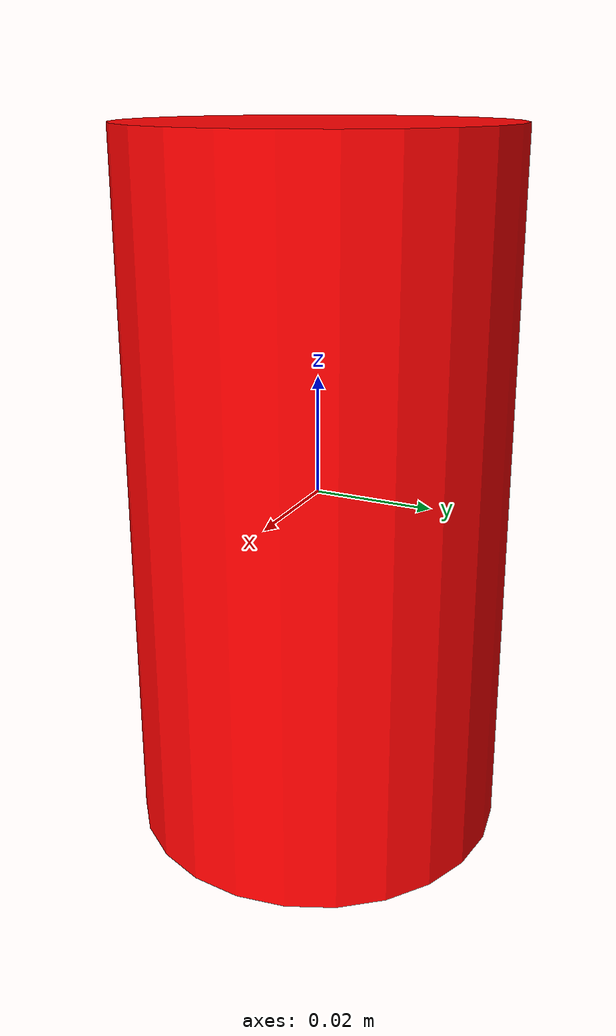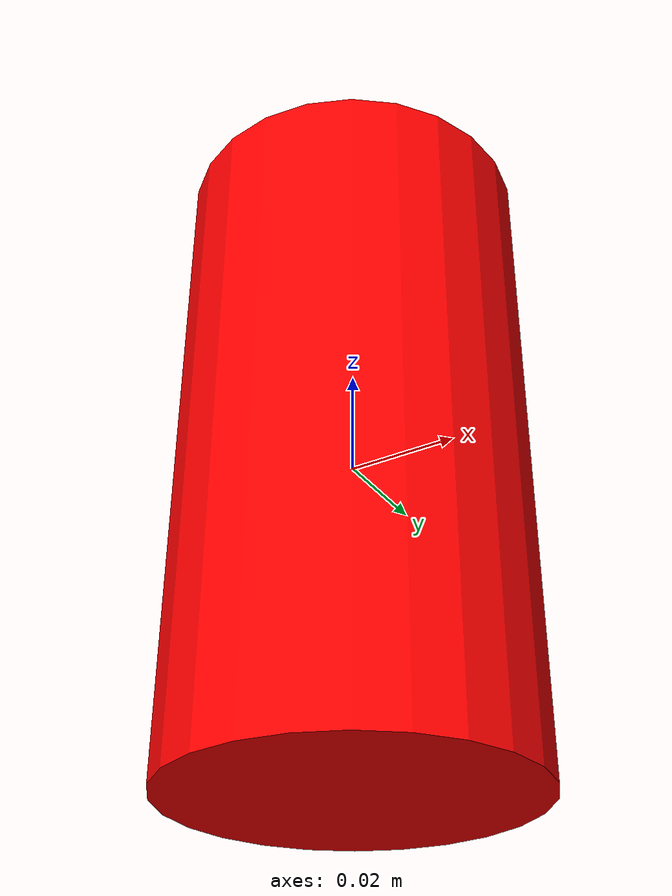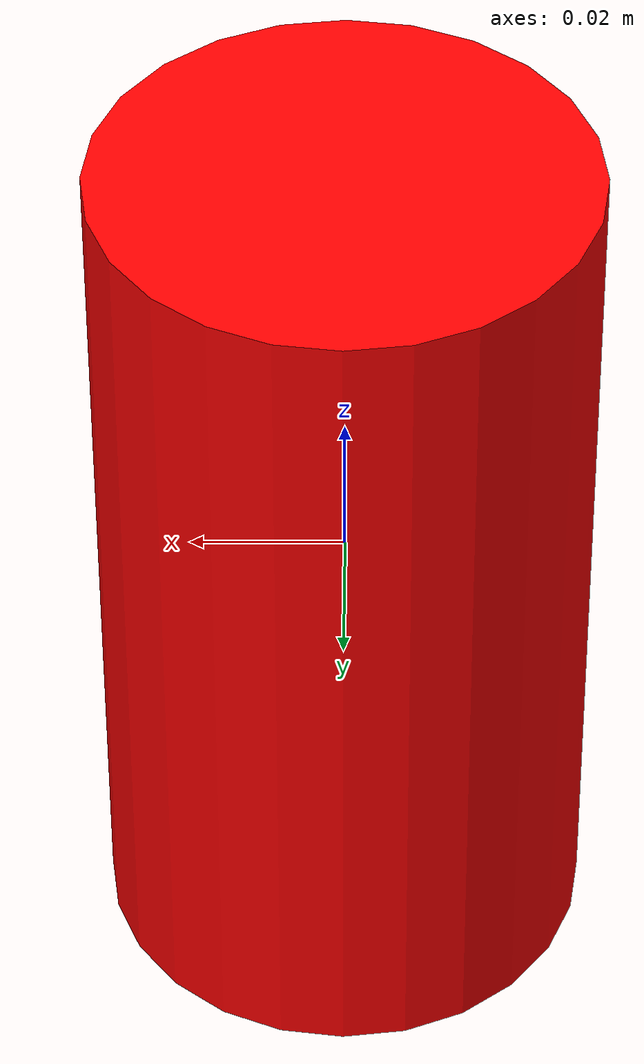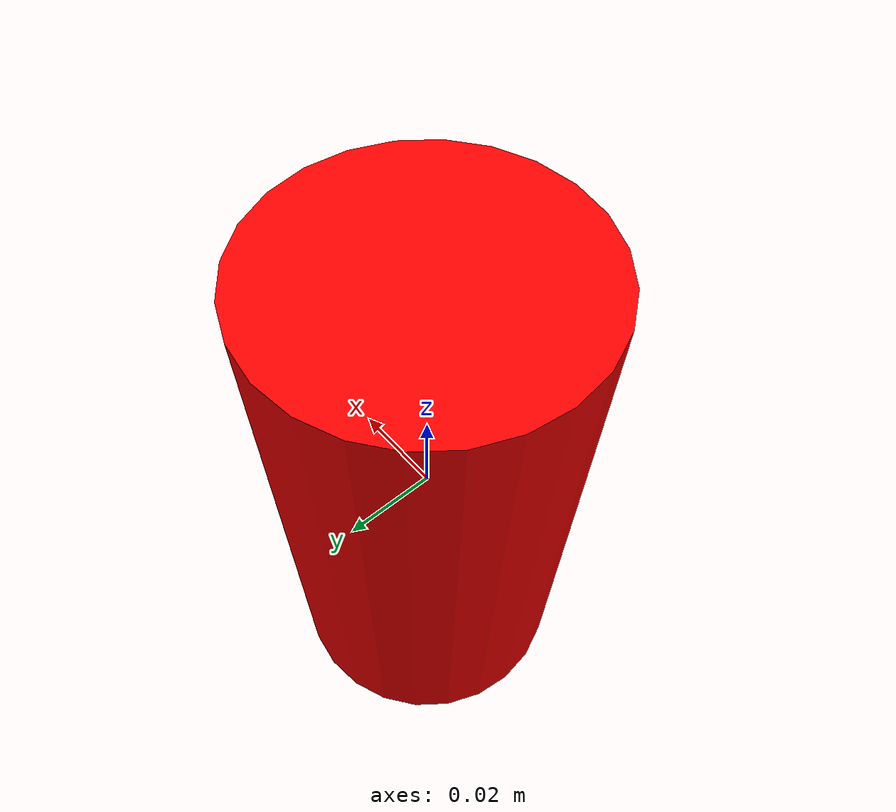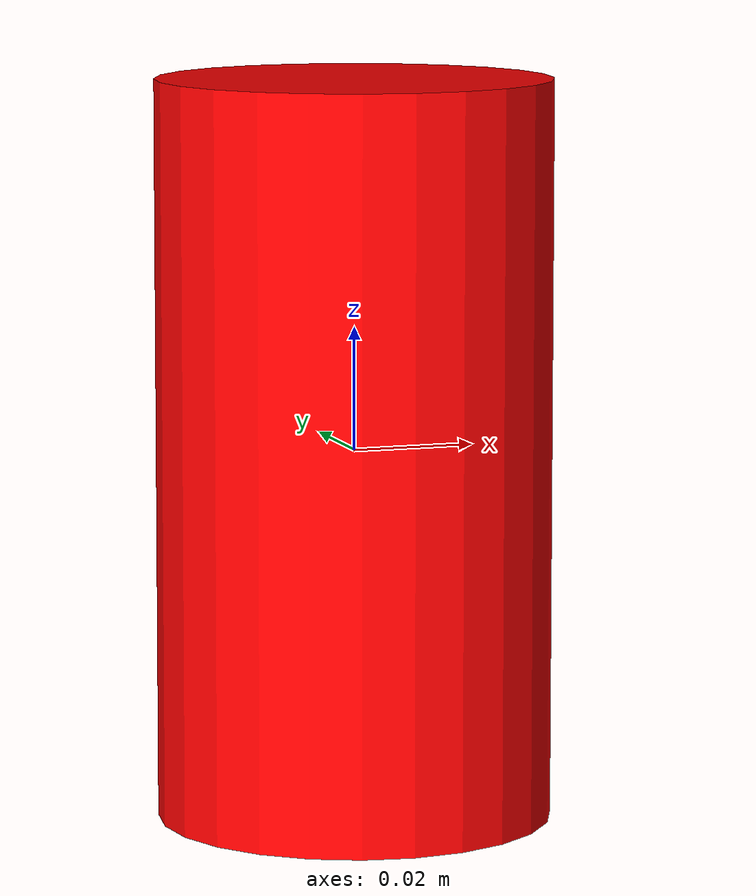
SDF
<?xml version='1.0'?>
<sdf version='1.4'>
  <model name="cylinder_coke_can">
    <link name='link'>
      <pose>0.0 0 0.0 0 0 0</pose>
      <inertial>
        <mass>0.35</mass>
        <inertia>
          <ixx>0.0005</ixx>
          <ixy>0</ixy>
          <ixz>0</ixz>
          <iyy>0.0005</iyy>
          <iyz>0</iyz>
          <izz>0.00017</izz>
        </inertia>
      </inertial>
     <collision name='collision'>
        <geometry>
          <cylinder>
            <radius>0.032</radius>
            <length>0.12</length>
          </cylinder>
        </geometry>

       <surface>
            <friction>
              <ode>
                <mu>100.0</mu>
                <mu2>100.0</mu2>
              </ode>
            </friction>
            <contact>
              <ode>
                <kp>1000000.0</kp>
                <kd>100.0</kd>
                <max_vel>1.0</max_vel>
                <min_depth>0.0005</min_depth>
              </ode>
            </contact>
          </surface>
      </collision>

      <visual name='visual'>
        <geometry>
          <cylinder>
            <radius>0.032</radius>
            <length>0.12</length>
          </cylinder>
        </geometry>
  <material>
    <ambient>1 0 0 1</ambient>
    <diffuse>1 0 0 1</diffuse>
    <specular>0.1 0.1 0.1 1</specular>
    <emissive>0 0 0 0</emissive>
  </material>
      </visual>
    </link>
  </model>
</sdf>
